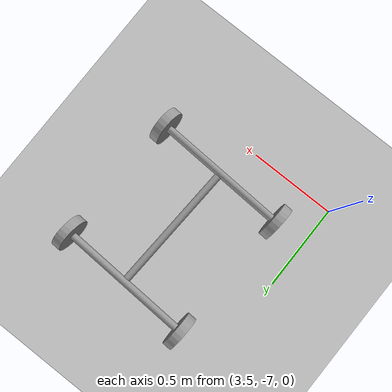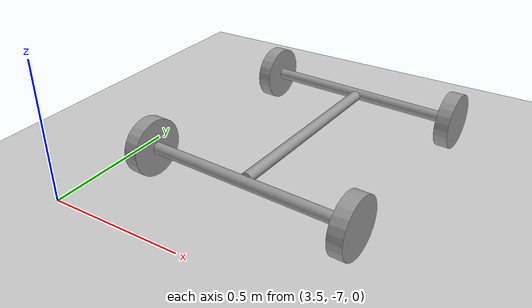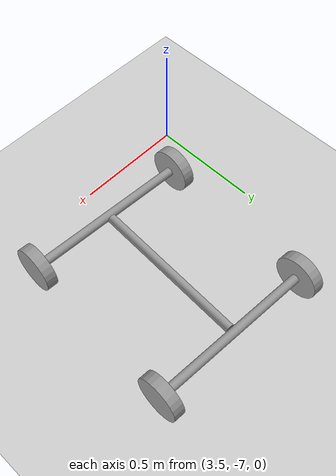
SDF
<sdf version="1.6">
 <world name="default">
  <model name="ground_plane">
   <static>1</static>
   <link name="link">
    <collision name="collision">
     <geometry><plane><normal>0 0 1</normal><size>100 100</size></plane></geometry>
     <surface>
      <contact><collide_bitmask>65535</collide_bitmask></contact>
      <friction><ode><mu>100</mu><mu2>50</mu2></ode></friction>
     </surface>
    </collision>
    <visual name="visual">
     <cast_shadows>0</cast_shadows>
     <geometry><plane><normal>0 0 1</normal><size>100 100</size></plane></geometry>
     <material>
      <script><uri>file://media/materials/scripts/gazebo.material</uri><name>Gazebo/Grey</name></script>
     </material>
    </visual>
   </link>
  </model>
  <model name="RobotModel_0">
   <link name="link_2_clone">
    <pose>10.2602 -7.39566 0.5 -1.57203 1.5707 3.14035</pose>
    <inertial>
     <mass>1</mass>
     <inertia><ixx>0.145833</ixx><ixy>0</ixy><ixz>0</ixz><iyy>0.145833</iyy><iyz>0</iyz><izz>0.125</izz></inertia>
    </inertial>
    <visual name="visual">
     <geometry><cylinder><radius>0.02</radius><length>0.7</length></cylinder></geometry>
     <material>
      <lighting>1</lighting>
      <script><uri>file://media/materials/scripts/gazebo.material</uri><name>Gazebo/Grey</name></script>
      <shader type="pixel"><normal_map>__default__</normal_map></shader>
      <ambient>0.3 0.3 0.3 1</ambient>
      <diffuse>0.7 0.7 0.7 1</diffuse>
      <specular>0.01 0.01 0.01 1</specular>
      <emissive>0 0 0 1</emissive>
     </material>
    </visual>
    <collision name="collision">
     <geometry><cylinder><radius>0.02</radius><length>0.7</length></cylinder></geometry>
     <surface>
      <friction>
       <ode><mu>1</mu><mu2>1</mu2><fdir1>0 0 0</fdir1><slip1>0</slip1><slip2>0</slip2></ode>
       <torsional>
        <coefficient>1</coefficient>
        <patch_radius>0</patch_radius>
        <surface_radius>0</surface_radius>
        <use_patch_radius>1</use_patch_radius>
        <ode><slip>0</slip></ode>
       </torsional>
      </friction>
      <bounce><restitution_coefficient>0</restitution_coefficient><threshold>1e+06</threshold></bounce>
      <contact>
       <collide_without_contact>0</collide_without_contact>
       <collide_without_contact_bitmask>1</collide_without_contact_bitmask>
       <collide_bitmask>1</collide_bitmask>
       <ode>
        <soft_cfm>0</soft_cfm>
        <soft_erp>0.2</soft_erp>
        <kp>1e+13</kp>
        <kd>1</kd>
        <max_vel>0.01</max_vel>
        <min_depth>0</min_depth>
       </ode>
       <bullet>
        <split_impulse>1</split_impulse>
        <split_impulse_penetration_threshold>-0.01</split_impulse_penetration_threshold>
        <soft_cfm>0</soft_cfm>
        <soft_erp>0.2</soft_erp>
        <kp>1e+13</kp>
        <kd>1</kd>
       </bullet>
      </contact>
     </surface>
    </collision>
   </link>
   <link name="link_2_clone_0">
    <pose>10.2602 -7.76566 0.5 -3.14159 1.5707 -3.14159</pose>
    <inertial>
     <mass>1</mass>
     <inertia><ixx>0.145833</ixx><ixy>0</ixy><ixz>0</ixz><iyy>0.145833</iyy><iyz>0</iyz><izz>0.125</izz></inertia>
    </inertial>
    <visual name="visual">
     <geometry><cylinder><radius>0.02</radius><length>0.7</length></cylinder></geometry>
     <material>
      <lighting>1</lighting>
      <script><uri>file://media/materials/scripts/gazebo.material</uri><name>Gazebo/Grey</name></script>
      <shader type="pixel"><normal_map>__default__</normal_map></shader>
      <ambient>0.3 0.3 0.3 1</ambient>
      <diffuse>0.7 0.7 0.7 1</diffuse>
      <specular>0.01 0.01 0.01 1</specular>
      <emissive>0 0 0 1</emissive>
     </material>
    </visual>
    <collision name="collision">
     <geometry><cylinder><radius>0.02</radius><length>0.7</length></cylinder></geometry>
     <surface>
      <friction>
       <ode><mu>1</mu><mu2>1</mu2><fdir1>0 0 0</fdir1><slip1>0</slip1><slip2>0</slip2></ode>
       <torsional>
        <coefficient>1</coefficient>
        <patch_radius>0</patch_radius>
        <surface_radius>0</surface_radius>
        <use_patch_radius>1</use_patch_radius>
        <ode><slip>0</slip></ode>
       </torsional>
      </friction>
      <bounce><restitution_coefficient>0</restitution_coefficient><threshold>1e+06</threshold></bounce>
      <contact>
       <collide_without_contact>0</collide_without_contact>
       <collide_without_contact_bitmask>1</collide_without_contact_bitmask>
       <collide_bitmask>1</collide_bitmask>
       <ode>
        <soft_cfm>0</soft_cfm>
        <soft_erp>0.2</soft_erp>
        <kp>1e+13</kp>
        <kd>1</kd>
        <max_vel>0.01</max_vel>
        <min_depth>0</min_depth>
       </ode>
       <bullet>
        <split_impulse>1</split_impulse>
        <split_impulse_penetration_threshold>-0.01</split_impulse_penetration_threshold>
        <soft_cfm>0</soft_cfm>
        <soft_erp>0.2</soft_erp>
        <kp>1e+13</kp>
        <kd>1</kd>
       </bullet>
      </contact>
     </surface>
    </collision>
   </link>
   <link name="link_2_clone_0_clone">
    <pose>10.6352 -7.76566 0.5 -3.14159 1.5707 -3.14159</pose>
    <inertial>
     <mass>1</mass>
     <inertia><ixx>0.145833</ixx><ixy>0</ixy><ixz>0</ixz><iyy>0.145833</iyy><iyz>0</iyz><izz>0.125</izz></inertia>
    </inertial>
    <visual name="visual">
     <geometry><cylinder><radius>0.1</radius><length>0.05</length></cylinder></geometry>
     <material>
      <lighting>1</lighting>
      <script><uri>file://media/materials/scripts/gazebo.material</uri><name>Gazebo/Grey</name></script>
      <shader type="pixel"><normal_map>__default__</normal_map></shader>
      <ambient>0.3 0.3 0.3 1</ambient>
      <diffuse>0.7 0.7 0.7 1</diffuse>
      <specular>0.01 0.01 0.01 1</specular>
      <emissive>0 0 0 1</emissive>
     </material>
    </visual>
    <collision name="collision">
     <geometry><cylinder><radius>0.1</radius><length>0.05</length></cylinder></geometry>
     <surface>
      <friction>
       <ode><mu>1</mu><mu2>1</mu2><fdir1>0 0 0</fdir1><slip1>0</slip1><slip2>0</slip2></ode>
       <torsional>
        <coefficient>1</coefficient>
        <patch_radius>0</patch_radius>
        <surface_radius>0</surface_radius>
        <use_patch_radius>1</use_patch_radius>
        <ode><slip>0</slip></ode>
       </torsional>
      </friction>
      <bounce><restitution_coefficient>0</restitution_coefficient><threshold>1e+06</threshold></bounce>
      <contact>
       <collide_without_contact>0</collide_without_contact>
       <collide_without_contact_bitmask>1</collide_without_contact_bitmask>
       <collide_bitmask>1</collide_bitmask>
       <ode>
        <soft_cfm>0</soft_cfm>
        <soft_erp>0.2</soft_erp>
        <kp>1e+13</kp>
        <kd>1</kd>
        <max_vel>0.01</max_vel>
        <min_depth>0</min_depth>
       </ode>
       <bullet>
        <split_impulse>1</split_impulse>
        <split_impulse_penetration_threshold>-0.01</split_impulse_penetration_threshold>
        <soft_cfm>0</soft_cfm>
        <soft_erp>0.2</soft_erp>
        <kp>1e+13</kp>
        <kd>1</kd>
       </bullet>
      </contact>
     </surface>
    </collision>
   </link>
   <link name="link_2_clone_0_clone_0">
    <pose>10.2602 -7.02566 0.5 -3.14159 1.5707 -3.14159</pose>
    <inertial>
     <mass>1</mass>
     <inertia><ixx>0.145833</ixx><ixy>0</ixy><ixz>0</ixz><iyy>0.145833</iyy><iyz>0</iyz><izz>0.125</izz></inertia>
    </inertial>
    <visual name="visual">
     <geometry><cylinder><radius>0.02</radius><length>0.7</length></cylinder></geometry>
     <material>
      <lighting>1</lighting>
      <script><uri>file://media/materials/scripts/gazebo.material</uri><name>Gazebo/Grey</name></script>
      <shader type="pixel"><normal_map>__default__</normal_map></shader>
      <ambient>0.3 0.3 0.3 1</ambient>
      <diffuse>0.7 0.7 0.7 1</diffuse>
      <specular>0.01 0.01 0.01 1</specular>
      <emissive>0 0 0 1</emissive>
     </material>
    </visual>
    <collision name="collision">
     <geometry><cylinder><radius>0.02</radius><length>0.7</length></cylinder></geometry>
     <surface>
      <friction>
       <ode><mu>1</mu><mu2>1</mu2><fdir1>0 0 0</fdir1><slip1>0</slip1><slip2>0</slip2></ode>
       <torsional>
        <coefficient>1</coefficient>
        <patch_radius>0</patch_radius>
        <surface_radius>0</surface_radius>
        <use_patch_radius>1</use_patch_radius>
        <ode><slip>0</slip></ode>
       </torsional>
      </friction>
      <bounce><restitution_coefficient>0</restitution_coefficient><threshold>1e+06</threshold></bounce>
      <contact>
       <collide_without_contact>0</collide_without_contact>
       <collide_without_contact_bitmask>1</collide_without_contact_bitmask>
       <collide_bitmask>1</collide_bitmask>
       <ode>
        <soft_cfm>0</soft_cfm>
        <soft_erp>0.2</soft_erp>
        <kp>1e+13</kp>
        <kd>1</kd>
        <max_vel>0.01</max_vel>
        <min_depth>0</min_depth>
       </ode>
       <bullet>
        <split_impulse>1</split_impulse>
        <split_impulse_penetration_threshold>-0.01</split_impulse_penetration_threshold>
        <soft_cfm>0</soft_cfm>
        <soft_erp>0.2</soft_erp>
        <kp>1e+13</kp>
        <kd>1</kd>
       </bullet>
      </contact>
     </surface>
    </collision>
   </link>
   <link name="link_2_clone_0_clone_clone_0">
    <pose>10.6352 -7.02566 0.5 -3.14159 1.5707 -3.14159</pose>
    <inertial>
     <mass>1</mass>
     <inertia><ixx>0.145833</ixx><ixy>0</ixy><ixz>0</ixz><iyy>0.145833</iyy><iyz>0</iyz><izz>0.125</izz></inertia>
    </inertial>
    <visual name="visual">
     <geometry><cylinder><radius>0.1</radius><length>0.05</length></cylinder></geometry>
     <material>
      <lighting>1</lighting>
      <script><uri>file://media/materials/scripts/gazebo.material</uri><name>Gazebo/Grey</name></script>
      <shader type="pixel"><normal_map>__default__</normal_map></shader>
      <ambient>0.3 0.3 0.3 1</ambient>
      <diffuse>0.7 0.7 0.7 1</diffuse>
      <specular>0.01 0.01 0.01 1</specular>
      <emissive>0 0 0 1</emissive>
     </material>
    </visual>
    <collision name="collision">
     <geometry><cylinder><radius>0.1</radius><length>0.05</length></cylinder></geometry>
     <surface>
      <friction>
       <ode><mu>1</mu><mu2>1</mu2><fdir1>0 0 0</fdir1><slip1>0</slip1><slip2>0</slip2></ode>
       <torsional>
        <coefficient>1</coefficient>
        <patch_radius>0</patch_radius>
        <surface_radius>0</surface_radius>
        <use_patch_radius>1</use_patch_radius>
        <ode><slip>0</slip></ode>
       </torsional>
      </friction>
      <bounce><restitution_coefficient>0</restitution_coefficient><threshold>1e+06</threshold></bounce>
      <contact>
       <collide_without_contact>0</collide_without_contact>
       <collide_without_contact_bitmask>1</collide_without_contact_bitmask>
       <collide_bitmask>1</collide_bitmask>
       <ode>
        <soft_cfm>0</soft_cfm>
        <soft_erp>0.2</soft_erp>
        <kp>1e+13</kp>
        <kd>1</kd>
        <max_vel>0.01</max_vel>
        <min_depth>0</min_depth>
       </ode>
       <bullet>
        <split_impulse>1</split_impulse>
        <split_impulse_penetration_threshold>-0.01</split_impulse_penetration_threshold>
        <soft_cfm>0</soft_cfm>
        <soft_erp>0.2</soft_erp>
        <kp>1e+13</kp>
        <kd>1</kd>
       </bullet>
      </contact>
     </surface>
    </collision>
   </link>
   <link name="link_2_clone_0_clone_clone_0_clone">
    <pose>9.88519 -7.02566 0.5 -3.14159 1.5707 -3.14159</pose>
    <inertial>
     <mass>1</mass>
     <inertia><ixx>0.145833</ixx><ixy>0</ixy><ixz>0</ixz><iyy>0.145833</iyy><iyz>0</iyz><izz>0.125</izz></inertia>
    </inertial>
    <visual name="visual">
     <geometry><cylinder><radius>0.1</radius><length>0.05</length></cylinder></geometry>
     <material>
      <lighting>1</lighting>
      <script><uri>file://media/materials/scripts/gazebo.material</uri><name>Gazebo/Grey</name></script>
      <shader type="pixel"><normal_map>__default__</normal_map></shader>
      <ambient>0.3 0.3 0.3 1</ambient>
      <diffuse>0.7 0.7 0.7 1</diffuse>
      <specular>0.01 0.01 0.01 1</specular>
      <emissive>0 0 0 1</emissive>
     </material>
    </visual>
    <collision name="collision">
     <geometry><cylinder><radius>0.1</radius><length>0.05</length></cylinder></geometry>
     <surface>
      <friction>
       <ode><mu>1</mu><mu2>1</mu2><fdir1>0 0 0</fdir1><slip1>0</slip1><slip2>0</slip2></ode>
       <torsional>
        <coefficient>1</coefficient>
        <patch_radius>0</patch_radius>
        <surface_radius>0</surface_radius>
        <use_patch_radius>1</use_patch_radius>
        <ode><slip>0</slip></ode>
       </torsional>
      </friction>
      <bounce><restitution_coefficient>0</restitution_coefficient><threshold>1e+06</threshold></bounce>
      <contact>
       <collide_without_contact>0</collide_without_contact>
       <collide_without_contact_bitmask>1</collide_without_contact_bitmask>
       <collide_bitmask>1</collide_bitmask>
       <ode>
        <soft_cfm>0</soft_cfm>
        <soft_erp>0.2</soft_erp>
        <kp>1e+13</kp>
        <kd>1</kd>
        <max_vel>0.01</max_vel>
        <min_depth>0</min_depth>
       </ode>
       <bullet>
        <split_impulse>1</split_impulse>
        <split_impulse_penetration_threshold>-0.01</split_impulse_penetration_threshold>
        <soft_cfm>0</soft_cfm>
        <soft_erp>0.2</soft_erp>
        <kp>1e+13</kp>
        <kd>1</kd>
       </bullet>
      </contact>
     </surface>
    </collision>
   </link>
   <link name="link_2_clone_0_clone_clone_1">
    <pose>9.88519 -7.76566 0.5 -3.14159 1.5707 -3.14159</pose>
    <inertial>
     <mass>1</mass>
     <inertia><ixx>0.145833</ixx><ixy>0</ixy><ixz>0</ixz><iyy>0.145833</iyy><iyz>0</iyz><izz>0.125</izz></inertia>
    </inertial>
    <visual name="visual">
     <geometry><cylinder><radius>0.1</radius><length>0.05</length></cylinder></geometry>
     <material>
      <lighting>1</lighting>
      <script><uri>file://media/materials/scripts/gazebo.material</uri><name>Gazebo/Grey</name></script>
      <shader type="pixel"><normal_map>__default__</normal_map></shader>
      <ambient>0.3 0.3 0.3 1</ambient>
      <diffuse>0.7 0.7 0.7 1</diffuse>
      <specular>0.01 0.01 0.01 1</specular>
      <emissive>0 0 0 1</emissive>
     </material>
    </visual>
    <collision name="collision">
     <geometry><cylinder><radius>0.1</radius><length>0.05</length></cylinder></geometry>
     <surface>
      <friction>
       <ode><mu>1</mu><mu2>1</mu2><fdir1>0 0 0</fdir1><slip1>0</slip1><slip2>0</slip2></ode>
       <torsional>
        <coefficient>1</coefficient>
        <patch_radius>0</patch_radius>
        <surface_radius>0</surface_radius>
        <use_patch_radius>1</use_patch_radius>
        <ode><slip>0</slip></ode>
       </torsional>
      </friction>
      <bounce><restitution_coefficient>0</restitution_coefficient><threshold>1e+06</threshold></bounce>
      <contact>
       <collide_without_contact>0</collide_without_contact>
       <collide_without_contact_bitmask>1</collide_without_contact_bitmask>
       <collide_bitmask>1</collide_bitmask>
       <ode>
        <soft_cfm>0</soft_cfm>
        <soft_erp>0.2</soft_erp>
        <kp>1e+13</kp>
        <kd>1</kd>
        <max_vel>0.01</max_vel>
        <min_depth>0</min_depth>
       </ode>
       <bullet>
        <split_impulse>1</split_impulse>
        <split_impulse_penetration_threshold>-0.01</split_impulse_penetration_threshold>
        <soft_cfm>0</soft_cfm>
        <soft_erp>0.2</soft_erp>
        <kp>1e+13</kp>
        <kd>1</kd>
       </bullet>
      </contact>
     </surface>
    </collision>
   </link>
   <joint name="link_2_clone_0_JOINT_3" type="revolute">
    <parent>link_2_clone_0</parent>
    <child>link_2_clone_0_clone</child>
    <axis>
     <xyz>1 0 0</xyz>
     <use_parent_model_frame>0</use_parent_model_frame>
     <limit>
      <lower>-1.79769e+308</lower>
      <upper>1.79769e+308</upper>
      <effort>-1</effort>
      <velocity>-1</velocity>
     </limit>
     <dynamics>
      <spring_reference>0</spring_reference>
      <spring_stiffness>0</spring_stiffness>
      <damping>0</damping>
     </dynamics>
    </axis>
    <physics>
     <ode><limit><cfm>0</cfm><erp>0.2</erp></limit><suspension><cfm>0</cfm><erp>0.2</erp></suspension></ode>
    </physics>
   </joint>
   <joint name="link_2_clone_0_JOINT_4" type="revolute">
    <parent>link_2_clone_0</parent>
    <child>link_2_clone_0_clone_clone_1</child>
    <axis>
     <xyz>1 0 0</xyz>
     <use_parent_model_frame>0</use_parent_model_frame>
     <limit>
      <lower>-1.79769e+308</lower>
      <upper>1.79769e+308</upper>
      <effort>-1</effort>
      <velocity>-1</velocity>
     </limit>
     <dynamics>
      <spring_reference>0</spring_reference>
      <spring_stiffness>0</spring_stiffness>
      <damping>0</damping>
     </dynamics>
    </axis>
    <physics>
     <ode><limit><cfm>0</cfm><erp>0.2</erp></limit><suspension><cfm>0</cfm><erp>0.2</erp></suspension></ode>
    </physics>
   </joint>
   <joint name="link_2_clone_0_clone_0_JOINT_10" type="revolute">
    <parent>link_2_clone_0_clone_0</parent>
    <child>link_2_clone_0_clone_clone_0</child>
    <axis>
     <xyz>1 0 0</xyz>
     <use_parent_model_frame>0</use_parent_model_frame>
     <limit>
      <lower>-1.79769e+308</lower>
      <upper>1.79769e+308</upper>
      <effort>-1</effort>
      <velocity>-1</velocity>
     </limit>
     <dynamics>
      <spring_reference>0</spring_reference>
      <spring_stiffness>0</spring_stiffness>
      <damping>0</damping>
     </dynamics>
    </axis>
    <physics>
     <ode><limit><cfm>0</cfm><erp>0.2</erp></limit><suspension><cfm>0</cfm><erp>0.2</erp></suspension></ode>
    </physics>
   </joint>
   <joint name="link_2_clone_0_clone_0_JOINT_11" type="revolute">
    <parent>link_2_clone_0_clone_0</parent>
    <child>link_2_clone_0_clone_clone_0_clone</child>
    <axis>
     <xyz>1 0 0</xyz>
     <use_parent_model_frame>0</use_parent_model_frame>
     <limit>
      <lower>-1.79769e+308</lower>
      <upper>1.79769e+308</upper>
      <effort>-1</effort>
      <velocity>-1</velocity>
     </limit>
     <dynamics>
      <spring_reference>0</spring_reference>
      <spring_stiffness>0</spring_stiffness>
      <damping>0</damping>
     </dynamics>
    </axis>
    <physics>
     <ode><limit><cfm>0</cfm><erp>0.2</erp></limit><suspension><cfm>0</cfm><erp>0.2</erp></suspension></ode>
    </physics>
   </joint>
   <joint name="link_2_clone_JOINT_2" type="revolute">
    <parent>link_2_clone</parent>
    <child>link_2_clone_0</child>
    <axis>
     <xyz>1 0 0</xyz>
     <use_parent_model_frame>0</use_parent_model_frame>
     <limit>
      <lower>-1.79769e+308</lower>
      <upper>1.79769e+308</upper>
      <effort>-1</effort>
      <velocity>-1</velocity>
     </limit>
     <dynamics>
      <spring_reference>0</spring_reference>
      <spring_stiffness>0</spring_stiffness>
      <damping>0</damping>
     </dynamics>
    </axis>
    <physics>
     <ode><limit><cfm>0</cfm><erp>0.2</erp></limit><suspension><cfm>0</cfm><erp>0.2</erp></suspension></ode>
    </physics>
   </joint>
   <joint name="link_2_clone_JOINT_8" type="revolute">
    <parent>link_2_clone</parent>
    <child>link_2_clone_0_clone_0</child>
    <axis>
     <xyz>1 0 0</xyz>
     <use_parent_model_frame>0</use_parent_model_frame>
     <limit>
      <lower>-1.79769e+308</lower>
      <upper>1.79769e+308</upper>
      <effort>-1</effort>
      <velocity>-1</velocity>
     </limit>
     <dynamics>
      <spring_reference>0</spring_reference>
      <spring_stiffness>0</spring_stiffness>
      <damping>0</damping>
     </dynamics>
    </axis>
    <physics>
     <ode><limit><cfm>0</cfm><erp>0.2</erp></limit><suspension><cfm>0</cfm><erp>0.2</erp></suspension></ode>
    </physics>
   </joint>
   <static>0</static>
   <pose>-5.7702 1.50516 -0.349977 0 2e-06 -0.050663</pose>
  </model>
 </world>
</sdf>
